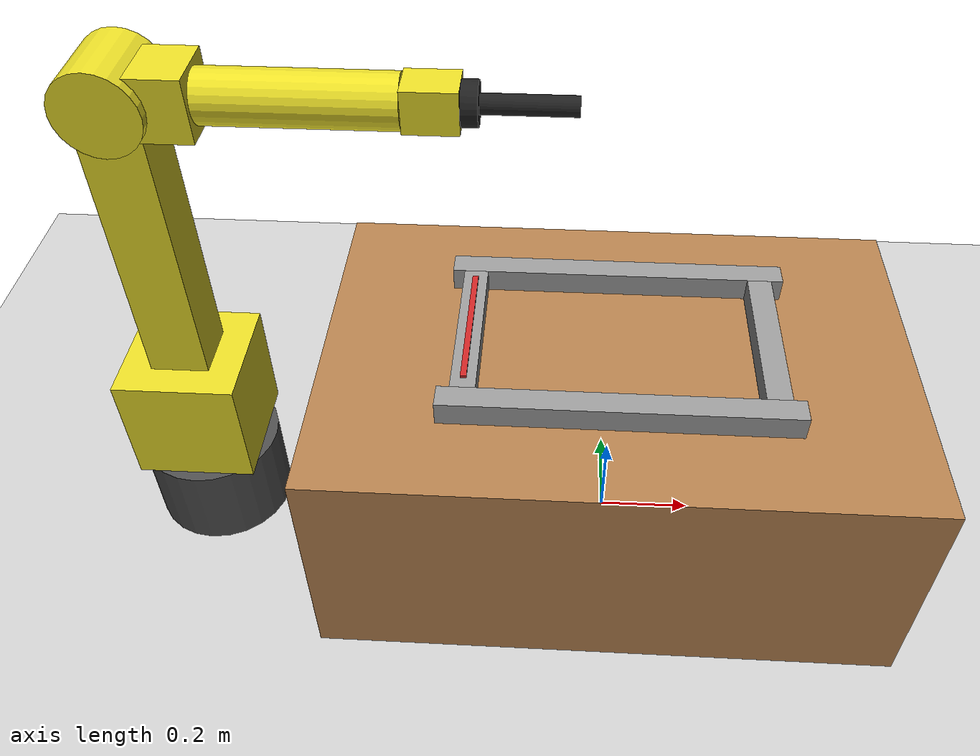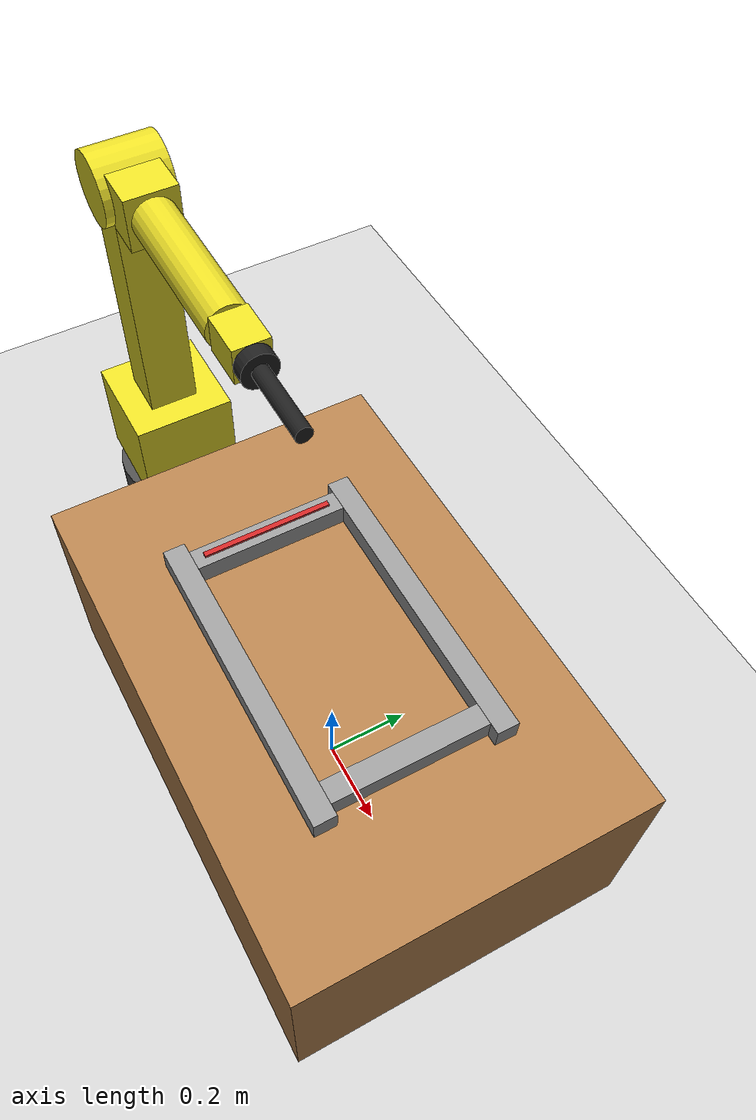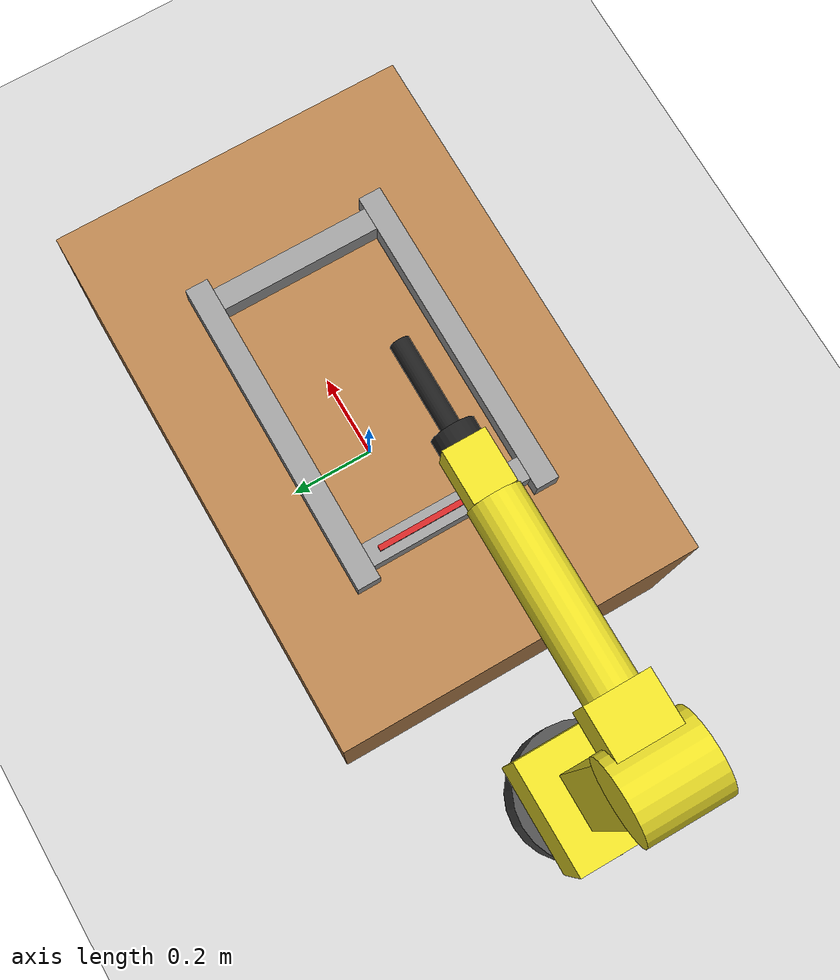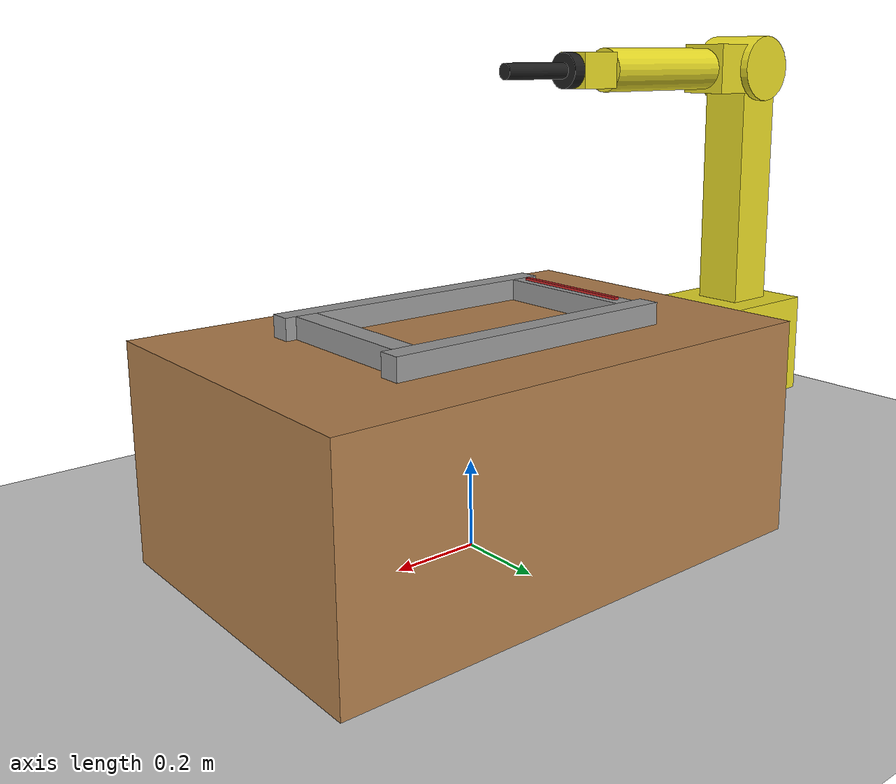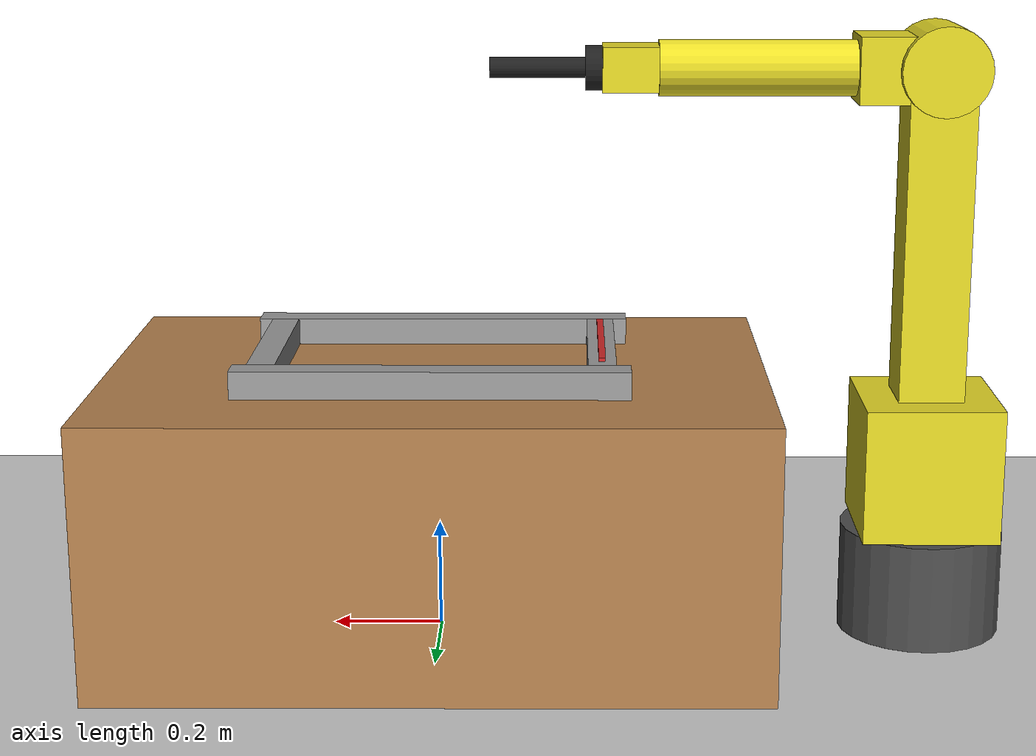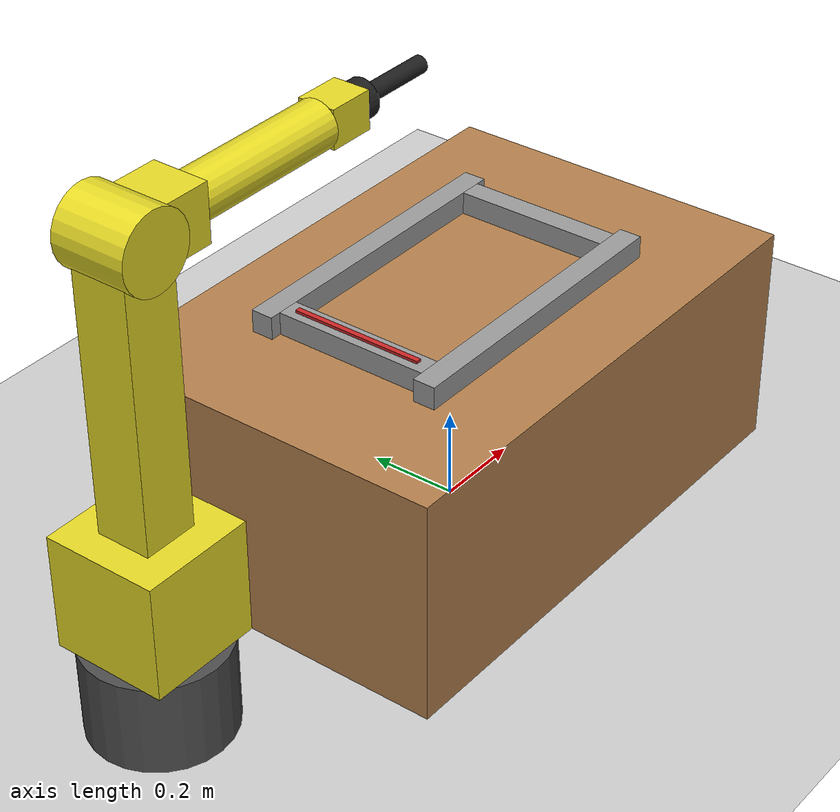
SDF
<sdf version='1.7'>
  <world name='default'>
    <light name='sun' type='directional'>
      <cast_shadows>1</cast_shadows>
      <pose>0 0 10 0 -0 0</pose>
      <diffuse>0.8 0.8 0.8 1</diffuse>
      <specular>0.2 0.2 0.2 1</specular>
      <attenuation>
        <range>1000</range>
        <constant>0.9</constant>
        <linear>0.01</linear>
        <quadratic>0.001</quadratic>
      </attenuation>
      <direction>-0.5 0.1 -0.9</direction>
      <spot>
        <inner_angle>0</inner_angle>
        <outer_angle>0</outer_angle>
        <falloff>0</falloff>
      </spot>
    </light>
    <model name='ground_plane'>
      <static>1</static>
      <link name='link'>
        <collision name='collision'>
          <geometry>
            <plane>
              <normal>0 0 1</normal>
              <size>100 100</size>
            </plane>
          </geometry>
          <surface>
            <contact>
              <collide_bitmask>65535</collide_bitmask>
              <ode/>
            </contact>
            <friction>
              <ode>
                <mu>100</mu>
                <mu2>50</mu2>
              </ode>
              <torsional>
                <ode/>
              </torsional>
            </friction>
            <bounce/>
          </surface>
          <max_contacts>10</max_contacts>
        </collision>
        <visual name='visual'>
          <cast_shadows>0</cast_shadows>
          <geometry>
            <plane>
              <normal>0 0 1</normal>
              <size>100 100</size>
            </plane>
          </geometry>
          <material>
            <script>
              <uri>file://media/materials/scripts/gazebo.material</uri>
              <name>Gazebo/Grey</name>
            </script>
          </material>
        </visual>
        <self_collide>0</self_collide>
        <enable_wind>0</enable_wind>
        <kinematic>0</kinematic>
      </link>
    </model>
    <gravity>0 0 -9.8</gravity>
    <magnetic_field>6e-06 2.3e-05 -4.2e-05</magnetic_field>
    <atmosphere type='adiabatic'/>
    <physics type='ode'>
      <max_step_size>0.001</max_step_size>
      <real_time_factor>1</real_time_factor>
      <real_time_update_rate>1000</real_time_update_rate>
    </physics>
    <scene>
      <ambient>0.4 0.4 0.4 1</ambient>
      <background>0.7 0.7 0.7 1</background>
      <shadows>1</shadows>
    </scene>
    <audio>
      <device>default</device>
    </audio>
    <wind/>
    <spherical_coordinates>
      <surface_model>EARTH_WGS84</surface_model>
      <latitude_deg>0</latitude_deg>
      <longitude_deg>0</longitude_deg>
      <elevation>0</elevation>
      <heading_deg>0</heading_deg>
    </spherical_coordinates>
    <model name='robot_a_cell'>
      <joint name='robot_a_mount' type='fixed'>
        <pose relative_to='__model__'>-0.9 0 0 0 -0 0</pose>
        <parent>world</parent>
        <child>robot_a_base_link</child>
      </joint>
      <link name='robot_a_base_link'>
        <gravity>0</gravity> <!-- AJOUT : evite l'effondrement du bras -->
        <pose relative_to='robot_a_mount'>0 0 0 0 -0 0</pose>
        <inertial>
          <pose>0 0 0.1 0 -0 0</pose>
          <mass>20</mass>
          <inertia>
            <ixx>0.179167</ixx>
            <ixy>0</ixy>
            <ixz>0</ixz>
            <iyy>0.179167</iyy>
            <iyz>0</iyz>
            <izz>0.225</izz>
          </inertia>
        </inertial>
        <collision name='robot_a_base_link_collision'>
          <pose>0 0 0.1 0 -0 0</pose>
          <geometry>
            <cylinder>
              <length>0.2</length>
              <radius>0.15</radius>
            </cylinder>
          </geometry>
          <surface>
            <contact>
              <ode/>
            </contact>
            <friction>
              <ode/>
              <torsional>
                <ode/>
              </torsional>
            </friction>
            <bounce/>
          </surface>
          <max_contacts>10</max_contacts>
        </collision>
        <visual name='robot_a_base_link_visual'>
          <pose>0 0 0.1 0 -0 0</pose>
          <geometry>
            <cylinder>
              <length>0.2</length>
              <radius>0.15</radius>
            </cylinder>
          </geometry>
          <material>
            <script>
              <name>Gazebo/DarkGrey</name>
              <uri>file://media/materials/scripts/gazebo.material</uri>
            </script>
          </material>
        </visual>
        <self_collide>0</self_collide>
        <enable_wind>0</enable_wind>
        <kinematic>0</kinematic>
      </link>
      <joint name='robot_a_joint_1' type='revolute'>
        <pose relative_to='robot_a_base_link'>0 0 0.2 0 -0 0</pose>
        <parent>robot_a_base_link</parent>
        <child>robot_a_link_1</child>
        <axis>
          <xyz>0 0 1</xyz>
          <limit>
            <lower>-2.97</lower>
            <upper>2.97</upper>
            <effort>500</effort>
            <velocity>2</velocity>
          </limit>
          <dynamics>
            <damping>1</damping>
            <friction>0</friction>
            <spring_reference>0</spring_reference>
            <spring_stiffness>0</spring_stiffness>
          </dynamics>
        </axis>
      </joint>
      <link name='robot_a_link_1'>
        <gravity>0</gravity> <!-- AJOUT : evite l'effondrement du bras -->
        <pose relative_to='robot_a_joint_1'>0 0 0 0 -0 0</pose>
        <inertial>
          <pose>0 0 0.125 0 -0 0</pose>
          <mass>10</mass>
          <inertia>
            <ixx>0.104167</ixx>
            <ixy>0</ixy>
            <ixz>0</ixz>
            <iyy>0.104167</iyy>
            <iyz>0</iyz>
            <izz>0.104167</izz>
          </inertia>
        </inertial>
        <collision name='robot_a_link_1_collision'>
          <pose>0 0 0.125 0 -0 0</pose>
          <geometry>
            <box>
              <size>0.25 0.25 0.25</size>
            </box>
          </geometry>
          <surface>
            <contact>
              <ode/>
            </contact>
            <friction>
              <ode/>
              <torsional>
                <ode/>
              </torsional>
            </friction>
            <bounce/>
          </surface>
          <max_contacts>10</max_contacts>
        </collision>
        <visual name='robot_a_link_1_visual'>
          <pose>0 0 0.125 0 -0 0</pose>
          <geometry>
            <box>
              <size>0.25 0.25 0.25</size>
            </box>
          </geometry>
          <material>
            <script>
              <name>Gazebo/Yellow</name>
              <uri>file://media/materials/scripts/gazebo.material</uri>
            </script>
          </material>
        </visual>
        <self_collide>0</self_collide>
        <enable_wind>0</enable_wind>
        <kinematic>0</kinematic>
      </link>
      <joint name='robot_a_joint_2' type='revolute'>
        <pose relative_to='robot_a_link_1'>0 0 0.25 0 -0 0</pose>
        <parent>robot_a_link_1</parent>
        <child>robot_a_link_2</child>
        <axis>
          <xyz>0 1 0</xyz>
          <limit>
            <lower>-2</lower>
            <upper>2</upper>
            <effort>500</effort>
            <velocity>2</velocity>
          </limit>
          <dynamics>
            <damping>1</damping>
            <friction>0</friction>
            <spring_reference>0</spring_reference>
            <spring_stiffness>0</spring_stiffness>
          </dynamics>
        </axis>
      </joint>
      <link name='robot_a_link_2'>
        <gravity>0</gravity> <!-- AJOUT : evite l'effondrement du bras -->
        <pose relative_to='robot_a_joint_2'>0 0 0 0 -0 0</pose>
        <inertial>
          <pose>0 0 0.3 0 -0 0</pose>
          <mass>8</mass>
          <inertia>
            <ixx>0.2496</ixx>
            <ixy>0</ixy>
            <ixz>0</ixz>
            <iyy>0.2496</iyy>
            <iyz>0</iyz>
            <izz>0.0192</izz>
          </inertia>
        </inertial>
        <collision name='robot_a_link_2_collision'>
          <pose>0 0 0.3 0 -0 0</pose>
          <geometry>
            <box>
              <size>0.12 0.12 0.6</size>
            </box>
          </geometry>
          <surface>
            <contact>
              <ode/>
            </contact>
            <friction>
              <ode/>
              <torsional>
                <ode/>
              </torsional>
            </friction>
            <bounce/>
          </surface>
          <max_contacts>10</max_contacts>
        </collision>
        <visual name='robot_a_link_2_visual'>
          <pose>0 0 0.3 0 -0 0</pose>
          <geometry>
            <box>
              <size>0.12 0.12 0.6</size>
            </box>
          </geometry>
          <material>
            <script>
              <name>Gazebo/Yellow</name>
              <uri>file://media/materials/scripts/gazebo.material</uri>
            </script>
          </material>
        </visual>
        <self_collide>0</self_collide>
        <enable_wind>0</enable_wind>
        <kinematic>0</kinematic>
      </link>
      <joint name='robot_a_joint_3' type='revolute'>
        <pose relative_to='robot_a_link_2'>0 0 0.6 0 -0 0</pose>
        <parent>robot_a_link_2</parent>
        <child>robot_a_link_3</child>
        <axis>
          <xyz>0 1 0</xyz>
          <limit>
            <lower>-2.5</lower>
            <upper>2.5</upper>
            <effort>300</effort>
            <velocity>2</velocity>
          </limit>
          <dynamics>
            <damping>1</damping>
            <friction>0</friction>
            <spring_reference>0</spring_reference>
            <spring_stiffness>0</spring_stiffness>
          </dynamics>
        </axis>
      </joint>
      <link name='robot_a_link_3'>
        <gravity>0</gravity> <!-- AJOUT : evite l'effondrement du bras -->
        <pose relative_to='robot_a_joint_3'>0 0 0 0 -0 0</pose>
        <inertial>
          <pose>0.075 0 0 0 -0 0</pose>
          <mass>4</mass>
          <inertia>
            <ixx>0.0096</ixx>
            <ixy>0</ixy>
            <ixz>0</ixz>
            <iyy>0.0123</iyy>
            <iyz>0</iyz>
            <izz>0.0123</izz>
          </inertia>
        </inertial>
        <collision name='robot_a_link_3_collision'>
          <pose>0.075 0 0 0 -0 0</pose>
          <geometry>
            <box>
              <size>0.15 0.12 0.12</size>
            </box>
          </geometry>
          <surface>
            <contact>
              <ode/>
            </contact>
            <friction>
              <ode/>
              <torsional>
                <ode/>
              </torsional>
            </friction>
            <bounce/>
          </surface>
          <max_contacts>10</max_contacts>
        </collision>
        <visual name='robot_a_link_3_visual'>
          <pose>0 0 0 1.5708 -0 0</pose>
          <geometry>
            <cylinder>
              <length>0.16</length>
              <radius>0.08</radius>
            </cylinder>
          </geometry>
          <material>
            <script>
              <name>Gazebo/Yellow</name>
              <uri>file://media/materials/scripts/gazebo.material</uri>
            </script>
          </material>
        </visual>
        <visual name='robot_a_link_3_visual_1'>
          <pose>0.075 0 0 0 -0 0</pose>
          <geometry>
            <box>
              <size>0.15 0.12 0.12</size>
            </box>
          </geometry>
          <material>
            <script>
              <name>Gazebo/Yellow</name>
              <uri>file://media/materials/scripts/gazebo.material</uri>
            </script>
          </material>
        </visual>
        <self_collide>0</self_collide>
        <enable_wind>0</enable_wind>
        <kinematic>0</kinematic>
      </link>
      <joint name='robot_a_joint_4' type='revolute'>
        <pose relative_to='robot_a_link_3'>0.15 0 0 0 -0 0</pose>
        <parent>robot_a_link_3</parent>
        <child>robot_a_link_4</child>
        <axis>
          <xyz>1 0 0</xyz>
          <limit>
            <lower>-3.14</lower>
            <upper>3.14</upper>
            <effort>100</effort>
            <velocity>2.5</velocity>
          </limit>
          <dynamics>
            <damping>0.5</damping>
            <friction>0</friction>
            <spring_reference>0</spring_reference>
            <spring_stiffness>0</spring_stiffness>
          </dynamics>
        </axis>
      </joint>
      <link name='robot_a_link_4'>
        <gravity>0</gravity> <!-- AJOUT : evite l'effondrement du bras -->
        <pose relative_to='robot_a_joint_4'>0 0 0 0 -0 0</pose>
        <inertial>
          <pose>0.175 0 0 3.14159 1.57079 3.14159</pose>
          <mass>3</mass>
          <inertia>
            <ixx>0.0325</ixx>
            <ixy>0</ixy>
            <ixz>0</ixz>
            <iyy>0.0325</iyy>
            <iyz>0</iyz>
            <izz>0.00375</izz>
          </inertia>
        </inertial>
        <collision name='robot_a_link_4_collision'>
          <pose>0.175 0 0 3.14159 1.57079 3.14159</pose>
          <geometry>
            <cylinder>
              <length>0.35</length>
              <radius>0.05</radius>
            </cylinder>
          </geometry>
          <surface>
            <contact>
              <ode/>
            </contact>
            <friction>
              <ode/>
              <torsional>
                <ode/>
              </torsional>
            </friction>
            <bounce/>
          </surface>
          <max_contacts>10</max_contacts>
        </collision>
        <visual name='robot_a_link_4_visual'>
          <pose>0.175 0 0 3.14159 1.57079 3.14159</pose>
          <geometry>
            <cylinder>
              <length>0.35</length>
              <radius>0.05</radius>
            </cylinder>
          </geometry>
          <material>
            <script>
              <name>Gazebo/Yellow</name>
              <uri>file://media/materials/scripts/gazebo.material</uri>
            </script>
          </material>
        </visual>
        <self_collide>0</self_collide>
        <enable_wind>0</enable_wind>
        <kinematic>0</kinematic>
      </link>
      <joint name='robot_a_joint_5' type='revolute'>
        <pose relative_to='robot_a_link_4'>0.35 0 0 0 -0 0</pose>
        <parent>robot_a_link_4</parent>
        <child>robot_a_link_5</child>
        <axis>
          <xyz>0 1 0</xyz>
          <limit>
            <lower>-2.1</lower>
            <upper>2.1</upper>
            <effort>100</effort>
            <velocity>3</velocity>
          </limit>
          <dynamics>
            <damping>0.5</damping>
            <friction>0</friction>
            <spring_reference>0</spring_reference>
            <spring_stiffness>0</spring_stiffness>
          </dynamics>
        </axis>
      </joint>
      <link name='robot_a_link_5'>
        <gravity>0</gravity> <!-- AJOUT : evite l'effondrement du bras -->
        <pose relative_to='robot_a_joint_5'>0 0 0 0 -0 0</pose>
        <inertial>
          <pose>0.05 0 0 0 -0 0</pose>
          <mass>1.5</mass>
          <inertia>
            <ixx>0.0016</ixx>
            <ixy>0</ixy>
            <ixz>0</ixz>
            <iyy>0.00205</iyy>
            <iyz>0</iyz>
            <izz>0.00205</izz>
          </inertia>
        </inertial>
        <collision name='robot_a_link_5_collision'>
          <pose>0.05 0 0 0 -0 0</pose>
          <geometry>
            <box>
              <size>0.1 0.08 0.08</size>
            </box>
          </geometry>
          <surface>
            <contact>
              <ode/>
            </contact>
            <friction>
              <ode/>
              <torsional>
                <ode/>
              </torsional>
            </friction>
            <bounce/>
          </surface>
          <max_contacts>10</max_contacts>
        </collision>
        <visual name='robot_a_link_5_visual'>
          <pose>0.05 0 0 0 -0 0</pose>
          <geometry>
            <box>
              <size>0.1 0.08 0.08</size>
            </box>
          </geometry>
          <material>
            <script>
              <name>Gazebo/Yellow</name>
              <uri>file://media/materials/scripts/gazebo.material</uri>
            </script>
          </material>
        </visual>
        <self_collide>0</self_collide>
        <enable_wind>0</enable_wind>
        <kinematic>0</kinematic>
      </link>
      <joint name='robot_a_joint_6' type='revolute'>
        <pose relative_to='robot_a_link_5'>0.1 0 0 0 -0 0</pose>
        <parent>robot_a_link_5</parent>
        <child>robot_a_link_6</child>
        <axis>
          <xyz>1 0 0</xyz>
          <limit>
            <lower>-3.14</lower>
            <upper>3.14</upper>
            <effort>50</effort>
            <velocity>3</velocity>
          </limit>
          <dynamics>
            <damping>0.3</damping>
            <friction>0</friction>
            <spring_reference>0</spring_reference>
            <spring_stiffness>0</spring_stiffness>
          </dynamics>
        </axis>
      </joint>
      <link name='robot_a_link_6'>
        <gravity>0</gravity> <!-- AJOUT : evite l'effondrement du bras -->
        <pose relative_to='robot_a_joint_6'>0 0 0 0 -0 0</pose>
        <inertial>
          <pose>0.1 0 0 3.14159 1.57079 3.14159</pose>
          <mass>0.8</mass>
          <inertia>
            <ixx>0.00284667</ixx>
            <ixy>0</ixy>
            <ixz>0</ixz>
            <iyy>0.00284667</iyy>
            <iyz>0</iyz>
            <izz>0.00036</izz>
          </inertia>
        </inertial>
        <collision name='robot_a_link_6_collision'>
          <pose>0.11 0 0 3.14159 1.57079 3.14159</pose>
          <geometry>
            <cylinder>
              <length>0.18</length>
              <radius>0.018</radius>
            </cylinder>
          </geometry>
          <surface>
            <contact>
              <ode/>
            </contact>
            <friction>
              <ode/>
              <torsional>
                <ode/>
              </torsional>
            </friction>
            <bounce/>
          </surface>
          <max_contacts>10</max_contacts>
        </collision>
        <visual name='robot_a_link_6_visual'>
          <pose>0.015 0 0 3.14159 1.57079 3.14159</pose>
          <geometry>
            <cylinder>
              <length>0.03</length>
              <radius>0.04</radius>
            </cylinder>
          </geometry>
          <material>
            <script>
              <name>Gazebo/Black</name>
              <uri>file://media/materials/scripts/gazebo.material</uri>
            </script>
          </material>
        </visual>
        <visual name='robot_a_link_6_visual_1'>
          <pose>0.11 0 0 3.14159 1.57079 3.14159</pose>
          <geometry>
            <cylinder>
              <length>0.18</length>
              <radius>0.018</radius>
            </cylinder>
          </geometry>
          <material>
            <script>
              <name>Gazebo/Black</name>
              <uri>file://media/materials/scripts/gazebo.material</uri>
            </script>
          </material>
        </visual>
        <self_collide>0</self_collide>
        <enable_wind>0</enable_wind>
        <kinematic>0</kinematic>
      </link>
      <joint name='table_joint' type='fixed'>
        <pose relative_to='__model__'>0 0 0.25 0 -0 0</pose>
        <parent>world</parent>
        <child>table</child>
      </joint>
      <link name='table'>
        <pose relative_to='table_joint'>0 0 0 0 -0 0</pose>
        <inertial>
          <pose>0 0 0.025505 0 -0 0</pose>
          <mass>55.1</mass>
          <inertia>
            <ixx>4.14596</ixx>
            <ixy>0</ixy>
            <ixz>0</ixz>
            <iyy>7.59967</iyy>
            <iyz>0</iyz>
            <izz>8.95729</izz>
          </inertia>
        </inertial>
        <collision name='table_collision'>
          <pose>0 0 0 0 -0 0</pose>
          <geometry>
            <box>
              <size>1.2 0.8 0.5</size>
            </box>
          </geometry>
          <surface>
            <contact>
              <ode/>
            </contact>
            <friction>
              <ode/>
              <torsional>
                <ode/>
              </torsional>
            </friction>
            <bounce/>
          </surface>
          <max_contacts>10</max_contacts>
        </collision>
        <collision name='table_fixed_joint_lump__structure_collision_1'>
          <pose>0 0 0.275 0 -0 0</pose>
          <geometry>
            <box>
              <size>0.7 0.45 0.05</size>
            </box>
          </geometry>
          <surface>
            <contact>
              <ode/>
            </contact>
            <friction>
              <ode/>
              <torsional>
                <ode/>
              </torsional>
            </friction>
            <bounce/>
          </surface>
          <max_contacts>10</max_contacts>
        </collision>
        <visual name='table_visual'>
          <pose>0 0 0 0 -0 0</pose>
          <geometry>
            <box>
              <size>1.2 0.8 0.5</size>
            </box>
          </geometry>
          <material>
            <script>
              <name>Gazebo/Wood</name>
              <uri>file://media/materials/scripts/gazebo.material</uri>
            </script>
          </material>
        </visual>
        <visual name='table_fixed_joint_lump__structure_visual_1'>
          <pose>0 0.2 0.275 0 -0 0</pose>
          <geometry>
            <box>
              <size>0.7 0.05 0.05</size>
            </box>
          </geometry>
          <material>
            <script>
              <name>Gazebo/Grey</name>
              <uri>file://media/materials/scripts/gazebo.material</uri>
            </script>
          </material>
        </visual>
        <visual name='table_fixed_joint_lump__structure_visual_2'>
          <pose>0 -0.2 0.275 0 -0 0</pose>
          <geometry>
            <box>
              <size>0.7 0.05 0.05</size>
            </box>
          </geometry>
          <material>
            <script>
              <name>Gazebo/Grey</name>
              <uri>file://media/materials/scripts/gazebo.material</uri>
            </script>
          </material>
        </visual>
        <visual name='table_fixed_joint_lump__structure_visual_3'>
          <pose>0.3 0 0.275 0 -0 0</pose>
          <geometry>
            <box>
              <size>0.05 0.35 0.05</size>
            </box>
          </geometry>
          <material>
            <script>
              <name>Gazebo/Grey</name>
              <uri>file://media/materials/scripts/gazebo.material</uri>
            </script>
          </material>
        </visual>
        <visual name='table_fixed_joint_lump__structure_visual_4'>
          <pose>-0.3 0 0.275 0 -0 0</pose>
          <geometry>
            <box>
              <size>0.05 0.35 0.05</size>
            </box>
          </geometry>
          <material>
            <script>
              <name>Gazebo/Grey</name>
              <uri>file://media/materials/scripts/gazebo.material</uri>
            </script>
          </material>
        </visual>
        <visual name='table_fixed_joint_lump__seams_visual_5'>
          <pose>-0.3 0 0.303 0 -0 0</pose>
          <geometry>
            <box>
              <size>0.012 0.3 0.006</size>
            </box>
          </geometry>
          <material>
            <script>
              <name>Gazebo/Red</name>
              <uri>file://media/materials/scripts/gazebo.material</uri>
            </script>
          </material>
        </visual>
        <self_collide>0</self_collide>
        <enable_wind>0</enable_wind>
        <kinematic>0</kinematic>
      </link>
      <static>0</static>
      <!-- ===== AJOUT : commande de trajectoire (gazebo_ros) ===== -->
      <!-- Recoit trajectory_msgs/JointTrajectory sur /robot_a/set_joint_trajectory.
           Un point de la trajectoire est applique a chaque periode (50 Hz). -->
      <plugin name='robot_a_trajectoire' filename='libgazebo_ros_joint_pose_trajectory.so'>
        <ros>
          <namespace>/robot_a</namespace>
        </ros>
        <update_rate>50</update_rate>
      </plugin>
      <!-- Publie les angles des articulations sur /robot_a/joint_states (utile pour RViz) -->
      <plugin name='robot_a_joint_states' filename='libgazebo_ros_joint_state_publisher.so'>
        <ros>
          <namespace>/robot_a</namespace>
        </ros>
        <update_rate>50</update_rate>
        <joint_name>robot_a_joint_1</joint_name>
        <joint_name>robot_a_joint_2</joint_name>
        <joint_name>robot_a_joint_3</joint_name>
        <joint_name>robot_a_joint_4</joint_name>
        <joint_name>robot_a_joint_5</joint_name>
        <joint_name>robot_a_joint_6</joint_name>
      </plugin>
      <pose>0 0 0 0 -0 0</pose>
    </model>
    <gui fullscreen='0'>
      <camera name='user_camera'>
        <pose>1.2 -1.8 1.4 0 0.358 2.297</pose>
        <view_controller>orbit</view_controller>
        <projection_type>perspective</projection_type>
      </camera>
    </gui>
  </world>
</sdf>
